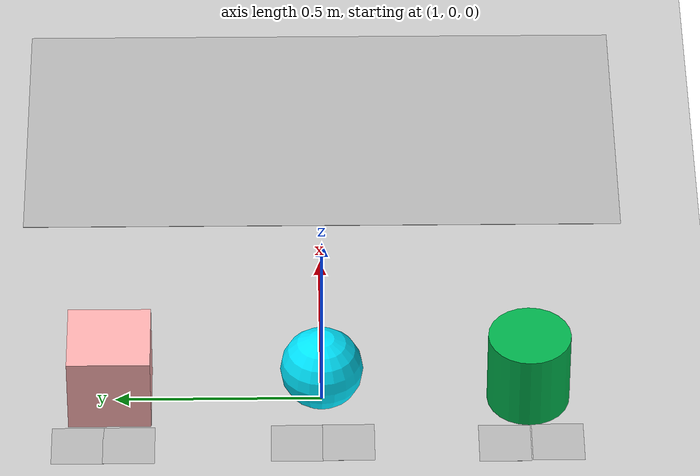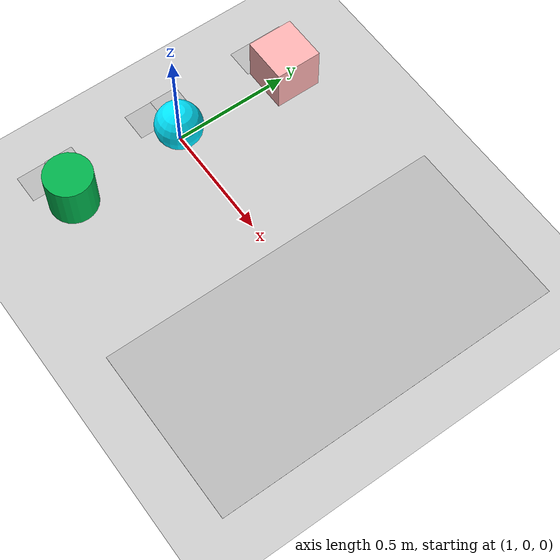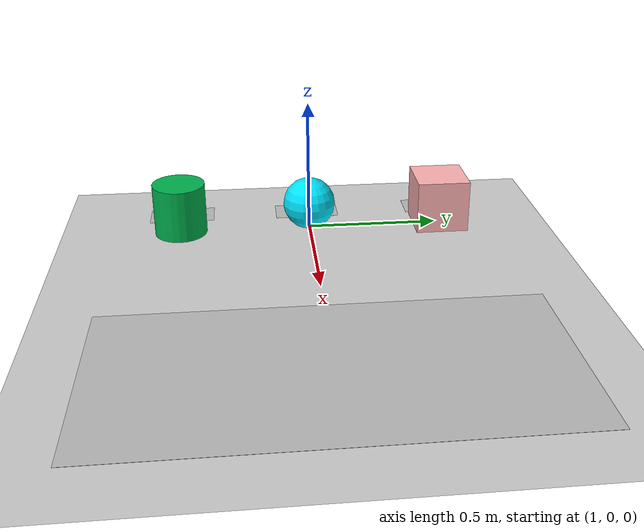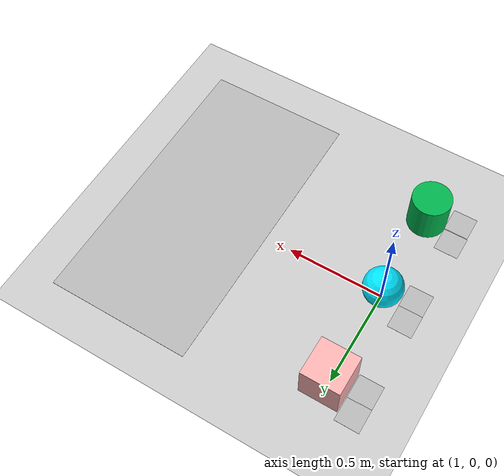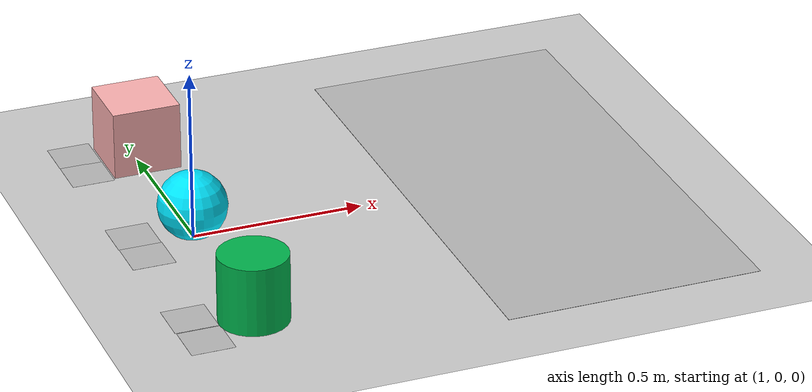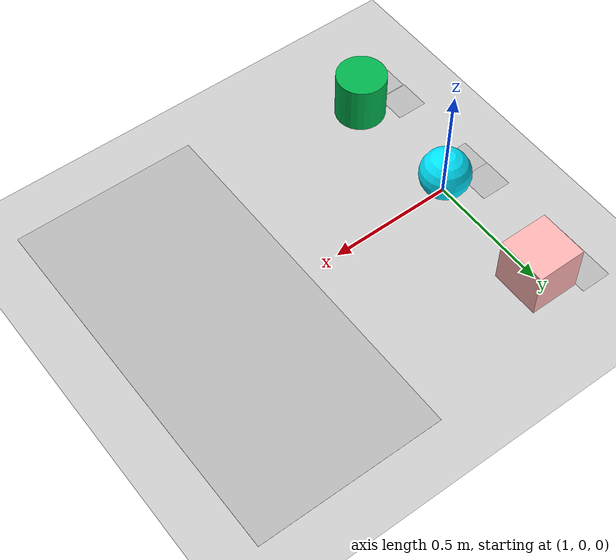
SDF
<sdf version="1.6">
 <world name="default">
  <model name="ground_plane">
   <static>1</static>
   <link name="link">
    <collision name="collision">
     <geometry><plane><normal>0 0 1</normal><size>100 100</size></plane></geometry>
     <surface><friction><ode><mu>100</mu><mu2>50</mu2></ode></friction></surface>
    </collision>
    <visual name="visual">
     <cast_shadows>0</cast_shadows>
     <geometry><plane><normal>0 0 1</normal><size>100 100</size></plane></geometry>
     <material>
      <script><uri>file://media/materials/scripts/gazebo.material</uri><name>Gazebo/Grey</name></script>
     </material>
    </visual>
   </link>
  </model>
  <model name="two_2">
   <static>1</static>
   <link name="link">
    <pose>0 0 1e-05 0 0 -1.57</pose>
    <collision name="collision">
     <geometry><plane><normal>0 0 1</normal><size>1 1</size></plane></geometry>
     <surface><friction><ode><mu>0.8</mu><mu2>0.5</mu2></ode></friction></surface>
    </collision>
    <visual name="visual">
     <geometry><plane><normal>0 0 1</normal><size>0.125 0.125</size></plane></geometry>
     <material>
      <script><uri>model://two/materials/scripts/two.material</uri><name>BYU2/ground</name></script>
     </material>
    </visual>
   </link>
   <pose>0.842266 -0.56634 0 0 -0 0</pose>
  </model>
  <model name="P_0">
   <static>1</static>
   <link name="link">
    <pose>0 0 1e-05 0 -0 0</pose>
    <collision name="collision">
     <geometry><plane><normal>0 0 1</normal><size>1.5 0.75</size></plane></geometry>
     <surface><friction><ode><mu>100</mu><mu2>50</mu2></ode></friction></surface>
    </collision>
    <visual name="visual">
     <cast_shadows>0</cast_shadows>
     <geometry><plane><normal>0 0 1</normal><size>0.75 1.5</size></plane></geometry>
     <material><script><uri>model://P/materials/scripts/P.material</uri><name>P/ground</name></script></material>
    </visual>
   </link>
   <pose>2.01181 -0.007139 0 0 -0 0</pose>
  </model>
  <model name="one">
   <static>1</static>
   <link name="link">
    <pose>0 0 1e-05 0 0 -1.57</pose>
    <collision name="collision">
     <geometry><plane><normal>0 0 1</normal><size>1 1</size></plane></geometry>
     <surface><friction><ode><mu>0.8</mu><mu2>0.5</mu2></ode></friction></surface>
    </collision>
    <visual name="visual">
     <geometry><plane><normal>0 0 1</normal><size>0.125 0.125</size></plane></geometry>
     <material>
      <script><uri>model://one/materials/scripts/one.material</uri><name>BYU1/ground</name></script>
     </material>
    </visual>
   </link>
   <pose>0.843235 0.060661 0 0 -0 0</pose>
  </model>
  <model name="three_2">
   <static>1</static>
   <link name="link">
    <pose>0 0 1e-05 0 0 -1.57</pose>
    <collision name="collision">
     <geometry><plane><normal>0 0 1</normal><size>1 1</size></plane></geometry>
     <surface><friction><ode><mu>0.8</mu><mu2>0.5</mu2></ode></friction></surface>
    </collision>
    <visual name="visual">
     <geometry><plane><normal>0 0 1</normal><size>0.125 0.125</size></plane></geometry>
     <material>
      <script><uri>model://three/materials/scripts/three.material</uri><name>BYU3/ground</name></script>
     </material>
    </visual>
   </link>
   <pose>0.837887 0.58767 0 0 -0 0</pose>
  </model>
  <model name="by">
   <static>1</static>
   <link name="link">
    <pose>0 0 1e-05 0 0 -1.57</pose>
    <collision name="collision">
     <geometry><plane><normal>0 0 1</normal><size>1 1</size></plane></geometry>
     <surface><friction><ode><mu>0.8</mu><mu2>0.5</mu2></ode></friction></surface>
    </collision>
    <visual name="visual">
     <cast_shadows>0</cast_shadows>
     <geometry><plane><normal>0 0 1</normal><size>0.125 0.125</size></plane></geometry>
     <material>
      <script><uri>model://by/materials/scripts/by.material</uri><name>BY/ground</name></script>
     </material>
    </visual>
   </link>
   <pose>0.838354 0.464559 0 0 -0 0</pose>
  </model>
  <model name="by_2">
   <static>1</static>
   <link name="link">
    <pose>0 0 1e-05 0 0 -1.57</pose>
    <collision name="collision">
     <geometry><plane><normal>0 0 1</normal><size>1 1</size></plane></geometry>
     <surface><friction><ode><mu>0.8</mu><mu2>0.5</mu2></ode></friction></surface>
    </collision>
    <visual name="visual">
     <cast_shadows>0</cast_shadows>
     <geometry><plane><normal>0 0 1</normal><size>0.125 0.125</size></plane></geometry>
     <material>
      <script><uri>model://by/materials/scripts/by.material</uri><name>BY/ground</name></script>
     </material>
    </visual>
   </link>
   <pose>0.838897 -0.438574 0 0 -0 0</pose>
  </model>
  <model name="by_5">
   <static>1</static>
   <link name="link">
    <pose>0 0 1e-05 0 0 -1.57</pose>
    <collision name="collision">
     <geometry><plane><normal>0 0 1</normal><size>1 1</size></plane></geometry>
     <surface><friction><ode><mu>0.8</mu><mu2>0.5</mu2></ode></friction></surface>
    </collision>
    <visual name="visual">
     <cast_shadows>0</cast_shadows>
     <geometry><plane><normal>0 0 1</normal><size>0.125 0.125</size></plane></geometry>
     <material>
      <script><uri>model://by/materials/scripts/by.material</uri><name>BY/ground</name></script>
     </material>
    </visual>
   </link>
   <pose>0.844841 -0.063218 0 0 -0 0</pose>
  </model>
  <model name="cylinder1_01">
   <link name="link_4">
    <pose>0.001599 -1.99956 0.439996 -3e-06 3e-06 0.000662</pose>
    <inertial>
     <mass>1</mass>
     <inertia><ixx>0.145833</ixx><ixy>0</ixy><ixz>0</ixz><iyy>0.145833</iyy><iyz>0</iyz><izz>0.125</izz></inertia>
    </inertial>
    <visual name="visual">
     <geometry><cylinder><radius>0.1</radius><length>0.2</length></cylinder></geometry>
     <material>
      <lighting>1</lighting>
      <script><uri>file://media/materials/scripts/gazebo.material</uri><name>Gazebo/Grey</name></script>
      <ambient>0.3 0.3 0.7 0.4</ambient>
      <diffuse>0 0.7 0.3 1</diffuse>
      <specular>0.01 0.01 0.01 1</specular>
      <emissive>1 0.5 0.5 1</emissive>
      <shader type="vertex"><normal_map>__default__</normal_map></shader>
     </material>
    </visual>
    <collision name="collision">
     <geometry><cylinder><radius>0.1</radius><length>0.2</length></cylinder></geometry>
     <surface>
      <friction>
       <ode><mu>0.1</mu><mu2>0.1</mu2><fdir1>0 0 0</fdir1><slip1>0</slip1><slip2>0</slip2></ode>
       <torsional>
        <coefficient>1</coefficient>
        <patch_radius>0</patch_radius>
        <surface_radius>0</surface_radius>
        <use_patch_radius>1</use_patch_radius>
        <ode><slip>0</slip></ode>
       </torsional>
      </friction>
      <bounce><restitution_coefficient>0.2</restitution_coefficient><threshold>-0.03</threshold></bounce>
      <contact>
       <collide_without_contact>0</collide_without_contact>
       <collide_without_contact_bitmask>1</collide_without_contact_bitmask>
       <collide_bitmask>1</collide_bitmask>
       <ode>
        <soft_cfm>0</soft_cfm>
        <soft_erp>0.2</soft_erp>
        <kp>1e+09</kp>
        <kd>1</kd>
        <max_vel>0.01</max_vel>
        <min_depth>0</min_depth>
       </ode>
       <bullet>
        <split_impulse>1</split_impulse>
        <split_impulse_penetration_threshold>-0.01</split_impulse_penetration_threshold>
        <soft_cfm>0</soft_cfm>
        <soft_erp>0.2</soft_erp>
        <kp>1e+09</kp>
        <kd>1</kd>
       </bullet>
      </contact>
     </surface>
    </collision>
   </link>
   <static>0</static>
   <plugin name="differential_drive_controller" filename="libgazebo_ros_diff_drive.so">
    <legacyMode>false</legacyMode>
    <alwaysOn>true</alwaysOn>
    <updateRate>20</updateRate>
    <leftJoint>left_wheel_hinge</leftJoint>
    <rightJoint>right_wheel_hinge</rightJoint>
    <wheelDiameter>0.1</wheelDiameter>
    <torque>20</torque>
    <commandTopic>cmd_vel</commandTopic>
    <odometryTopic>odom</odometryTopic>
    <odometryFrame>odom</odometryFrame>
    <robotBaseFrame>chassis</robotBaseFrame>
    <robotNamespace>/mybot/</robotNamespace>
   </plugin>
   <plugin name="gazebo_ros_control" filename="libgazebo_ros_control.so">
    <robotNamespace>/mybot</robotNamespace>
    <robotSimType>gazebo_ros_control/DefaultRobotHWSim</robotSimType>
    <legacyModeNS>true</legacyModeNS>
   </plugin>
   <pose>0.998158 1.49981 -0.339979 4e-06 -5e-06 0.000827</pose>
  </model>
  <model name="unit_sphere9">
   <link name="link">
    <inertial>
     <mass>1</mass>
     <inertia><ixx>0.1</ixx><ixy>0</ixy><ixz>0</ixz><iyy>0.1</iyy><iyz>0</iyz><izz>0.1</izz></inertia>
    </inertial>
    <visual name="ModelPreview_1::link::visual_1">
     <geometry><sphere><radius>0.1</radius></sphere></geometry>
     <material>
      <script><name>Gazebo/Grey</name><uri>file://media/materials/scripts/gazebo.material</uri></script>
      <ambient>0 0.9 1 1</ambient>
      <diffuse>0.7 0.7 0.7 1</diffuse>
      <specular>0 0 0 1</specular>
      <emissive>1 0 0.6 0.6</emissive>
      <shader type="vertex"><normal_map>__default__</normal_map></shader>
     </material>
    </visual>
    <collision name="collision">
     <geometry><sphere><radius>0.1</radius></sphere></geometry>
     <surface>
      <friction>
       <ode><mu>0.1</mu><mu2>0.1</mu2><fdir1>0 0 0</fdir1><slip1>0</slip1><slip2>0</slip2></ode>
       <torsional>
        <coefficient>1</coefficient>
        <patch_radius>0</patch_radius>
        <surface_radius>0</surface_radius>
        <use_patch_radius>1</use_patch_radius>
        <ode><slip>0</slip></ode>
       </torsional>
      </friction>
      <bounce><restitution_coefficient>0.2</restitution_coefficient><threshold>0</threshold></bounce>
      <contact>
       <collide_without_contact>0</collide_without_contact>
       <collide_without_contact_bitmask>1</collide_without_contact_bitmask>
       <collide_bitmask>1</collide_bitmask>
       <ode>
        <soft_cfm>0</soft_cfm>
        <soft_erp>0.2</soft_erp>
        <kp>1e+06</kp>
        <kd>1</kd>
        <max_vel>25</max_vel>
        <min_depth>0</min_depth>
       </ode>
       <bullet>
        <split_impulse>1</split_impulse>
        <split_impulse_penetration_threshold>-0.01</split_impulse_penetration_threshold>
        <soft_cfm>0</soft_cfm>
        <soft_erp>0.2</soft_erp>
        <kp>1e+06</kp>
        <kd>1</kd>
       </bullet>
      </contact>
     </surface>
    </collision>
   </link>
   <static>0</static>
   <pose>1 0 0.100009 0 -0 0</pose>
  </model>
  <model name="sq_0_6">
   <link name="link_6">
    <pose>-5.99529 1.91125 0.399991 0 -0 0</pose>
    <inertial>
     <mass>1</mass>
     <inertia>
      <ixx>0.166667</ixx>
      <ixy>0</ixy>
      <ixz>0</ixz>
      <iyy>0.166667</iyy>
      <iyz>0</iyz>
      <izz>0.166667</izz>
     </inertia>
    </inertial>
    <visual name="visual">
     <geometry><box><size>0.2 0.2 0.2</size></box></geometry>
     <material>
      <lighting>1</lighting>
      <script><uri>file://media/materials/scripts/gazebo.material</uri><name>Gazebo/Grey</name></script>
      <ambient>1 0 1 1</ambient>
      <diffuse>1 0.7 0.7 1</diffuse>
      <specular>0.91 0.01 0.31 0.6</specular>
      <emissive>1 1 0 0.9</emissive>
      <shader type="vertex"><normal_map>__default__</normal_map></shader>
     </material>
    </visual>
    <collision name="collision">
     <geometry><box><size>0.2 0.2 0.2</size></box></geometry>
     <surface>
      <friction>
       <ode><mu>0.1</mu><mu2>0.1</mu2><fdir1>0 0 0</fdir1><slip1>0</slip1><slip2>0</slip2></ode>
       <torsional>
        <coefficient>1</coefficient>
        <patch_radius>0</patch_radius>
        <surface_radius>0</surface_radius>
        <use_patch_radius>1</use_patch_radius>
        <ode><slip>0</slip></ode>
       </torsional>
      </friction>
      <bounce><restitution_coefficient>0.2</restitution_coefficient><threshold>0</threshold></bounce>
      <contact>
       <collide_without_contact>0</collide_without_contact>
       <collide_without_contact_bitmask>1</collide_without_contact_bitmask>
       <collide_bitmask>1</collide_bitmask>
       <ode>
        <soft_cfm>0</soft_cfm>
        <soft_erp>0.2</soft_erp>
        <kp>1e+13</kp>
        <kd>1</kd>
        <max_vel>0.01</max_vel>
        <min_depth>0</min_depth>
       </ode>
       <bullet>
        <split_impulse>1</split_impulse>
        <split_impulse_penetration_threshold>-0.01</split_impulse_penetration_threshold>
        <soft_cfm>0</soft_cfm>
        <soft_erp>0.2</soft_erp>
        <kp>1e+13</kp>
        <kd>1</kd>
       </bullet>
      </contact>
     </surface>
    </collision>
   </link>
   <static>0</static>
   <pose>7 -1.40001 -0.299995 -0 1e-06 -2e-06</pose>
  </model>
 </world>
</sdf>
